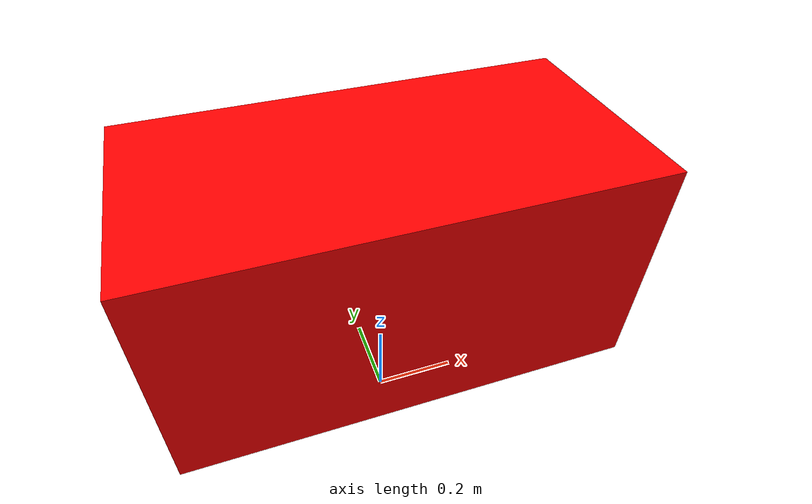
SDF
<?xml version="1.0" ?>
<sdf version="1.9">
  <model name="floribot4">
    <static>false</static>

    <link name="base_link">
      <pose>0 0 0.5 0 0 0</pose>

      <inertial>
        <mass>10.0</mass>
        <inertia>
          <ixx>1.0</ixx>
          <iyy>1.0</iyy>
          <izz>1.0</izz>
          <ixy>0.0</ixy>
          <ixz>0.0</ixz>
          <iyz>0.0</iyz>
        </inertia>
      </inertial>

      <collision name="collision">
        <geometry>
          <box>
            <size>1.0 0.5 0.5</size>
          </box>
        </geometry>
      </collision>

      <visual name="visual">
        <geometry>
          <box>
            <size>1.0 0.5 0.5</size>
          </box>
        </geometry>
        <material>
          <ambient>1 0 0 1</ambient>
          <diffuse>1 0 0 1</diffuse>
        </material>
      </visual>
    </link>
  </model>
</sdf>
